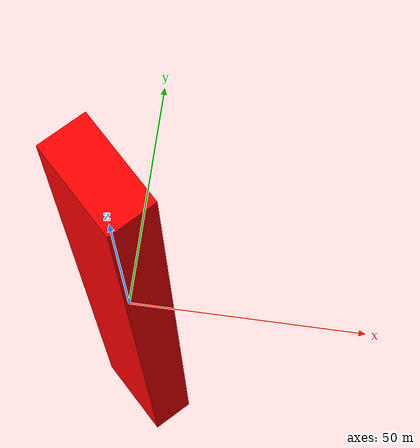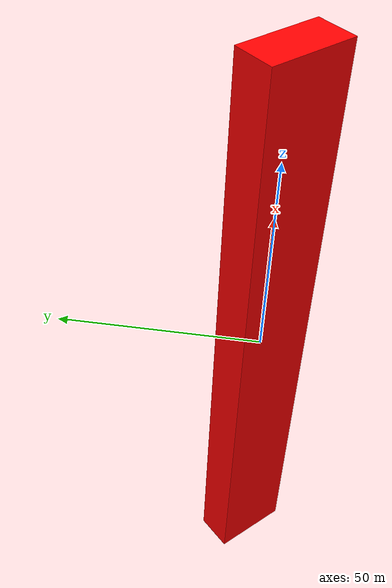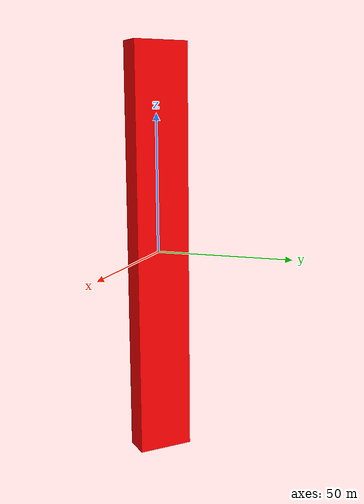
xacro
<?xml version="1.0" encoding="utf-8"?>
<robot xmlns:xacro="http://www.ros.org/wiki/xacro" name="box">

  <xacro:arg name="length" default="20" />
  <xacro:arg name="breadth" default="10" />
  <xacro:arg name="height" default="150" />

  <xacro:property name="l" value="$(arg length)" />
  <xacro:property name="b" value="$(arg breadth)" />
  <xacro:property name="h" value="$(arg height)" />

  <!-- Used for fixing robot to Gazebo 'base_link' -->
  <link name="world"/>

  <joint name="world_fixed" type="fixed">
    <parent link="world"/>
    <child link="box_link"/>
    <origin xyz="0 0 0" rpy="0 0 ${-pi/4}"/>
  </joint>

  <link name="box_link">
    <visual>
      <origin xyz="0 0 0" rpy="0 0 0"/>
      <geometry>
         <box size ="${l} ${b} ${h}"/>
      </geometry>
      <material name="red">
        <color rgba="1 0 0 1"/>
      </material>
    </visual>
    <inertial>
      <origin xyz="0 0 0" rpy="0 0 0"/>
      <mass value="100.0"/>
      <inertia ixx="1"  ixy="0"  ixz="0" iyy="1" iyz="0" izz="1" />
    </inertial>
    <collision>
      <origin xyz="0 0 0" rpy="0 0 0"/>
      <geometry>
         <box size ="${l} ${b} ${h}"/>
      </geometry>
    </collision>
    <self_collide>true</self_collide>
    <kinematic>0</kinematic>
  </link>

</robot>
